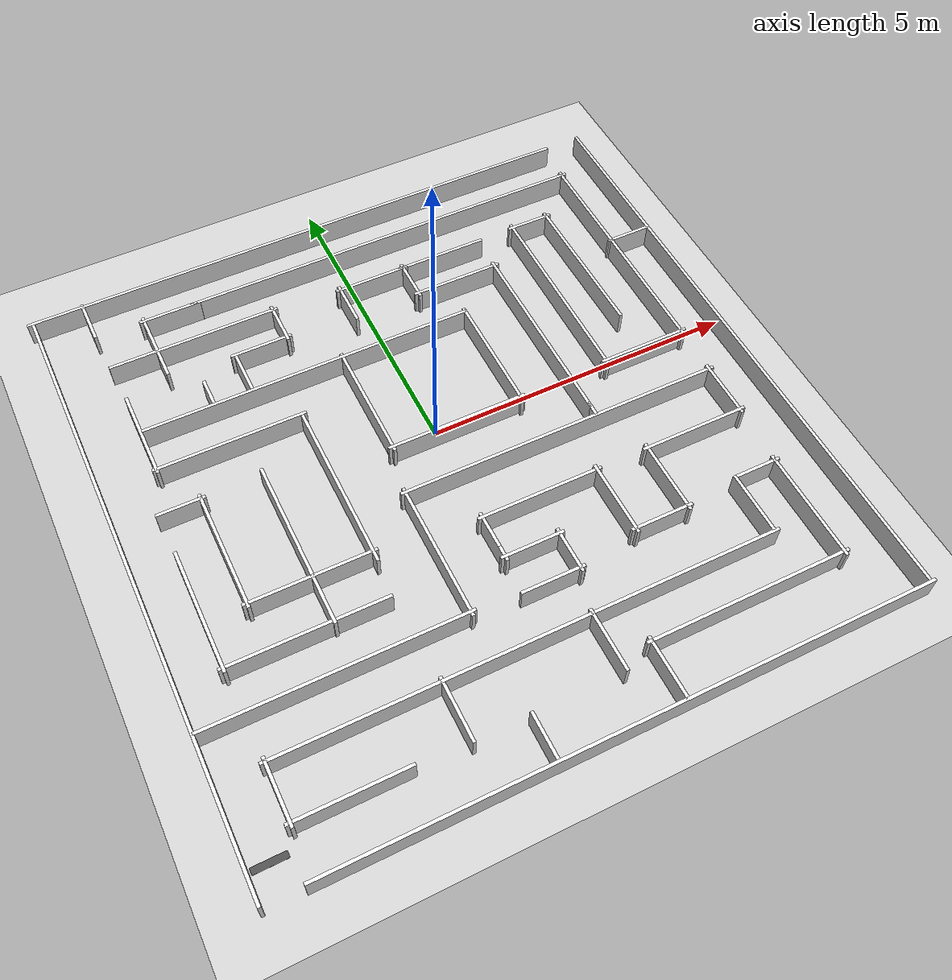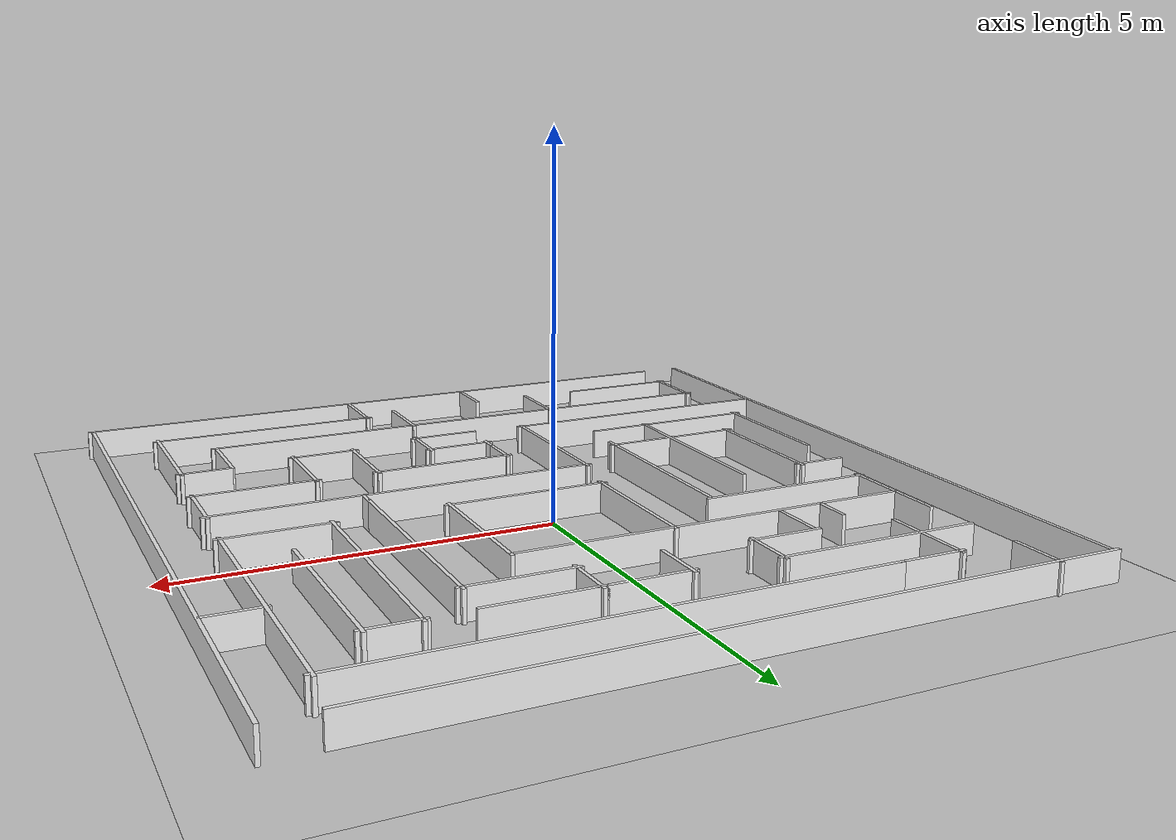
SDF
<sdf version="1.6">
 <world name="default">
  <model name="ground_plane">
   <static>1</static>
   <link name="link">
    <collision name="collision">
     <geometry><plane><normal>0 0 1</normal><size>100 100</size></plane></geometry>
     <surface><friction><ode><mu>100</mu><mu2>50</mu2></ode></friction></surface>
    </collision>
    <visual name="visual">
     <cast_shadows>0</cast_shadows>
     <geometry><plane><normal>0 0 1</normal><size>100 100</size></plane></geometry>
     <material>
      <script><uri>file://media/materials/scripts/gazebo.material</uri><name>Gazebo/Grey</name></script>
     </material>
    </visual>
   </link>
  </model>
  <model name="10x10_maze_1_body_0">
   <pose>0 -0.5 0 0 -0 0</pose>
   <link name="Wall_0">
    <collision name="Wall_0_Collision">
     <geometry><box><size>9.83 0.05 0.4</size></box></geometry>
     <pose>0 0 0.2 0 -0 0</pose>
    </collision>
    <visual name="Wall_0_Visual">
     <pose>0 0 0.2 0 -0 0</pose>
     <geometry><box><size>9.83 0.05 0.4</size></box></geometry>
     <material>
      <script><uri>file://media/materials/scripts/gazebo.material</uri><name>Gazebo/White</name></script>
      <ambient>1 1 1 1</ambient>
     </material>
    </visual>
    <pose>-4.87625 -0.01472 0 0 0 -1.5708</pose>
   </link>
   <link name="Wall_103">
    <collision name="Wall_103_Collision">
     <geometry><box><size>0.5 0.05 0.4</size></box></geometry>
     <pose>0 0 0.2 0 -0 0</pose>
    </collision>
    <visual name="Wall_103_Visual">
     <pose>0 0 0.2 0 -0 0</pose>
     <geometry><box><size>0.5 0.05 0.4</size></box></geometry>
     <material>
      <script><uri>file://media/materials/scripts/gazebo.material</uri><name>Gazebo/White</name></script>
      <ambient>1 1 1 1</ambient>
     </material>
    </visual>
    <pose>-2.85325 2.41853 0 0 -0 1.5708</pose>
   </link>
   <link name="Wall_106">
    <collision name="Wall_106_Collision">
     <geometry><box><size>6.77039 0.05 0.4</size></box></geometry>
     <pose>0 0 0.2 0 -0 0</pose>
    </collision>
    <visual name="Wall_106_Visual">
     <pose>0 0 0.2 0 -0 0</pose>
     <geometry><box><size>6.77039 0.05 0.4</size></box></geometry>
     <material>
      <script><uri>file://media/materials/scripts/gazebo.material</uri><name>Gazebo/White</name></script>
      <ambient>1 1 1 1</ambient>
     </material>
    </visual>
    <pose>0.865745 4.20453 0 0 -0 0</pose>
   </link>
   <link name="Wall_107">
    <collision name="Wall_107_Collision">
     <geometry><box><size>4 0.05 0.4</size></box></geometry>
     <pose>0 0 0.2 0 -0 0</pose>
    </collision>
    <visual name="Wall_107_Visual">
     <pose>0 0 0.2 0 -0 0</pose>
     <geometry><box><size>4 0.05 0.4</size></box></geometry>
     <material>
      <script><uri>file://media/materials/scripts/gazebo.material</uri><name>Gazebo/White</name></script>
      <ambient>1 1 1 1</ambient>
     </material>
    </visual>
    <pose>4.17575 2.27953 0 0 0 -1.5708</pose>
   </link>
   <link name="Wall_108">
    <collision name="Wall_108_Collision">
     <geometry><box><size>1.5 0.05 0.4</size></box></geometry>
     <pose>0 0 0.2 0 -0 0</pose>
    </collision>
    <visual name="Wall_108_Visual">
     <pose>0 0 0.2 0 -0 0</pose>
     <geometry><box><size>1.5 0.05 0.4</size></box></geometry>
     <material>
      <script><uri>file://media/materials/scripts/gazebo.material</uri><name>Gazebo/White</name></script>
      <ambient>1 1 1 1</ambient>
     </material>
    </visual>
    <pose>3.50075 0.354528 0 0 -0 3.14159</pose>
   </link>
   <link name="Wall_109">
    <collision name="Wall_109_Collision">
     <geometry><box><size>3.26525 0.05 0.4</size></box></geometry>
     <pose>0 0 0.2 0 -0 0</pose>
    </collision>
    <visual name="Wall_109_Visual">
     <pose>0 0 0.2 0 -0 0</pose>
     <geometry><box><size>3.26525 0.05 0.4</size></box></geometry>
     <material>
      <script><uri>file://media/materials/scripts/gazebo.material</uri><name>Gazebo/White</name></script>
      <ambient>1 1 1 1</ambient>
     </material>
    </visual>
    <pose>2.83324 1.91203 0 0 -0 1.56598</pose>
   </link>
   <link name="Wall_110">
    <collision name="Wall_110_Collision">
     <geometry><box><size>0.779601 0.05 0.4</size></box></geometry>
     <pose>0 0 0.2 0 -0 0</pose>
    </collision>
    <visual name="Wall_110_Visual">
     <pose>0 0 0.2 0 -0 0</pose>
     <geometry><box><size>0.779601 0.05 0.4</size></box></geometry>
     <material>
      <script><uri>file://media/materials/scripts/gazebo.material</uri><name>Gazebo/White</name></script>
      <ambient>1 1 1 1</ambient>
     </material>
    </visual>
    <pose>3.15575 3.46703 0 0 0 -0.007936</pose>
   </link>
   <link name="Wall_111">
    <collision name="Wall_111_Collision">
     <geometry><box><size>2.51521 0.05 0.4</size></box></geometry>
     <pose>0 0 0.2 0 -0 0</pose>
    </collision>
    <visual name="Wall_111_Visual">
     <pose>0 0 0.2 0 -0 0</pose>
     <geometry><box><size>2.51521 0.05 0.4</size></box></geometry>
     <material>
      <script><uri>file://media/materials/scripts/gazebo.material</uri><name>Gazebo/White</name></script>
      <ambient>1 1 1 1</ambient>
     </material>
    </visual>
    <pose>3.47824 2.28213 0 0 0 -1.56445</pose>
   </link>
   <link name="Wall_113">
    <collision name="Wall_113_Collision">
     <geometry><box><size>1.5 0.05 0.4</size></box></geometry>
     <pose>0 0 0.2 0 -0 0</pose>
    </collision>
    <visual name="Wall_113_Visual">
     <pose>0 0 0.2 0 -0 0</pose>
     <geometry><box><size>1.5 0.05 0.4</size></box></geometry>
     <material>
      <script><uri>file://media/materials/scripts/gazebo.material</uri><name>Gazebo/White</name></script>
      <ambient>1 1 1 1</ambient>
     </material>
    </visual>
    <pose>1.50675 2.85353 0 0 -0 3.14159</pose>
   </link>
   <link name="Wall_114">
    <collision name="Wall_114_Collision">
     <geometry><box><size>0.75 0.05 0.4</size></box></geometry>
     <pose>0 0 0.2 0 -0 0</pose>
    </collision>
    <visual name="Wall_114_Visual">
     <pose>0 0 0.2 0 -0 0</pose>
     <geometry><box><size>0.75 0.05 0.4</size></box></geometry>
     <material>
      <script><uri>file://media/materials/scripts/gazebo.material</uri><name>Gazebo/White</name></script>
      <ambient>1 1 1 1</ambient>
     </material>
    </visual>
    <pose>0.831745 3.15353 0 0 -0 1.5708</pose>
   </link>
   <link name="Wall_115">
    <collision name="Wall_115_Collision">
     <geometry><box><size>1.25 0.05 0.4</size></box></geometry>
     <pose>0 0 0.2 0 -0 0</pose>
    </collision>
    <visual name="Wall_115_Visual">
     <pose>0 0 0.2 0 -0 0</pose>
     <geometry><box><size>1.25 0.05 0.4</size></box></geometry>
     <material>
      <script><uri>file://media/materials/scripts/gazebo.material</uri><name>Gazebo/White</name></script>
      <ambient>1 1 1 1</ambient>
     </material>
    </visual>
    <pose>0.281745 3.45353 0 0 -0 3.14159</pose>
   </link>
   <link name="Wall_116">
    <collision name="Wall_116_Collision">
     <geometry><box><size>0.75 0.05 0.4</size></box></geometry>
     <pose>0 0 0.2 0 -0 0</pose>
    </collision>
    <visual name="Wall_116_Visual">
     <pose>0 0 0.2 0 -0 0</pose>
     <geometry><box><size>0.75 0.05 0.4</size></box></geometry>
     <material>
      <script><uri>file://media/materials/scripts/gazebo.material</uri><name>Gazebo/White</name></script>
      <ambient>1 1 1 1</ambient>
     </material>
    </visual>
    <pose>-0.268255 3.15353 0 0 0 -1.5708</pose>
   </link>
   <link name="Wall_118">
    <collision name="Wall_118_Collision">
     <geometry><box><size>1.5 0.05 0.4</size></box></geometry>
     <pose>0 0 0.2 0 -0 0</pose>
    </collision>
    <visual name="Wall_118_Visual">
     <pose>0 0 0.2 0 -0 0</pose>
     <geometry><box><size>1.5 0.05 0.4</size></box></geometry>
     <material>
      <script><uri>file://media/materials/scripts/gazebo.material</uri><name>Gazebo/White</name></script>
      <ambient>1 1 1 1</ambient>
     </material>
    </visual>
    <pose>1.50675 3.45353 0 0 -0 0</pose>
   </link>
   <link name="Wall_122">
    <collision name="Wall_122_Collision">
     <geometry><box><size>1 0.05 0.4</size></box></geometry>
     <pose>0 0 0.2 0 -0 0</pose>
    </collision>
    <visual name="Wall_122_Visual">
     <pose>0 0 0.2 0 -0 0</pose>
     <geometry><box><size>1 0.05 0.4</size></box></geometry>
     <material>
      <script><uri>file://media/materials/scripts/gazebo.material</uri><name>Gazebo/White</name></script>
      <ambient>1 1 1 1</ambient>
     </material>
    </visual>
    <pose>-2.86925 4.20453 0 0 -0 3.14159</pose>
   </link>
   <link name="Wall_123">
    <collision name="Wall_123_Collision">
     <geometry><box><size>1.25 0.05 0.4</size></box></geometry>
     <pose>0 0 0.2 0 -0 0</pose>
    </collision>
    <visual name="Wall_123_Visual">
     <pose>0 0 0.2 0 -0 0</pose>
     <geometry><box><size>1.25 0.05 0.4</size></box></geometry>
     <material>
      <script><uri>file://media/materials/scripts/gazebo.material</uri><name>Gazebo/White</name></script>
      <ambient>1 1 1 1</ambient>
     </material>
    </visual>
    <pose>-3.29426 3.65453 0 0 0 -1.5708</pose>
   </link>
   <link name="Wall_125">
    <collision name="Wall_125_Collision">
     <geometry><box><size>0.75 0.05 0.4</size></box></geometry>
     <pose>0 0 0.2 0 -0 0</pose>
    </collision>
    <visual name="Wall_125_Visual">
     <pose>0 0 0.2 0 -0 0</pose>
     <geometry><box><size>0.75 0.05 0.4</size></box></geometry>
     <material>
      <script><uri>file://media/materials/scripts/gazebo.material</uri><name>Gazebo/White</name></script>
      <ambient>1 1 1 1</ambient>
     </material>
    </visual>
    <pose>4.49375 2.51153 0 0 -0 0</pose>
   </link>
   <link name="Wall_134">
    <collision name="Wall_134_Collision">
     <geometry><box><size>0.75 0.05 0.4</size></box></geometry>
     <pose>0 0 0.2 0 -0 0</pose>
    </collision>
    <visual name="Wall_134_Visual">
     <pose>0 0 0.2 0 -0 0</pose>
     <geometry><box><size>0.75 0.05 0.4</size></box></geometry>
     <material>
      <script><uri>file://media/materials/scripts/gazebo.material</uri><name>Gazebo/White</name></script>
      <ambient>1 1 1 1</ambient>
     </material>
    </visual>
    <pose>-3.89825 0.701528 0 0 -0 3.14159</pose>
   </link>
   <link name="Wall_136">
    <collision name="Wall_136_Collision">
     <geometry><box><size>5.32 0.05 0.4</size></box></geometry>
     <pose>0 0 0.2 0 -0 0</pose>
    </collision>
    <visual name="Wall_136_Visual">
     <pose>0 0 0.2 0 -0 0</pose>
     <geometry><box><size>5.32 0.05 0.4</size></box></geometry>
     <material>
      <script><uri>file://media/materials/scripts/gazebo.material</uri><name>Gazebo/White</name></script>
      <ambient>1 1 1 1</ambient>
     </material>
    </visual>
    <pose>-1.33126 2.18653 0 0 -0 3.14159</pose>
   </link>
   <link name="Wall_139">
    <collision name="Wall_139_Collision">
     <geometry><box><size>2.25 0.05 0.4</size></box></geometry>
     <pose>0 0 0.2 0 -0 0</pose>
    </collision>
    <visual name="Wall_139_Visual">
     <pose>0 0 0.2 0 -0 0</pose>
     <geometry><box><size>2.25 0.05 0.4</size></box></geometry>
     <material>
      <script><uri>file://media/materials/scripts/gazebo.material</uri><name>Gazebo/White</name></script>
      <ambient>1 1 1 1</ambient>
     </material>
    </visual>
    <pose>0.274745 0.319528 0 0 -0 0</pose>
   </link>
   <link name="Wall_14">
    <collision name="Wall_14_Collision">
     <geometry><box><size>7.75 0.05 0.4</size></box></geometry>
     <pose>0 0 0.2 0 -0 0</pose>
    </collision>
    <visual name="Wall_14_Visual">
     <pose>0 0 0.2 0 -0 0</pose>
     <geometry><box><size>7.75 0.05 0.4</size></box></geometry>
     <material>
      <script><uri>file://media/materials/scripts/gazebo.material</uri><name>Gazebo/White</name></script>
      <ambient>1 1 1 1</ambient>
     </material>
    </visual>
    <pose>-0.382255 -3.30847 0 0 -0 3.14159</pose>
   </link>
   <link name="Wall_140">
    <collision name="Wall_140_Collision">
     <geometry><box><size>2 0.05 0.4</size></box></geometry>
     <pose>0 0 0.2 0 -0 0</pose>
    </collision>
    <visual name="Wall_140_Visual">
     <pose>0 0 0.2 0 -0 0</pose>
     <geometry><box><size>2 0.05 0.4</size></box></geometry>
     <material>
      <script><uri>file://media/materials/scripts/gazebo.material</uri><name>Gazebo/White</name></script>
      <ambient>1 1 1 1</ambient>
     </material>
    </visual>
    <pose>1.32475 1.24453 0 0 -0 1.5708</pose>
   </link>
   <link name="Wall_143">
    <collision name="Wall_143_Collision">
     <geometry><box><size>1 0.05 0.4</size></box></geometry>
     <pose>0 0 0.2 0 -0 0</pose>
    </collision>
    <visual name="Wall_143_Visual">
     <pose>0 0 0.2 0 -0 0</pose>
     <geometry><box><size>1 0.05 0.4</size></box></geometry>
     <material>
      <script><uri>file://media/materials/scripts/gazebo.material</uri><name>Gazebo/White</name></script>
      <ambient>1 1 1 1</ambient>
     </material>
    </visual>
    <pose>-4.18225 -3.73347 0 0 0 -1.5708</pose>
   </link>
   <link name="Wall_144">
    <collision name="Wall_144_Collision">
     <geometry><box><size>1.75 0.05 0.4</size></box></geometry>
     <pose>0 0 0.2 0 -0 0</pose>
    </collision>
    <visual name="Wall_144_Visual">
     <pose>0 0 0.2 0 -0 0</pose>
     <geometry><box><size>1.75 0.05 0.4</size></box></geometry>
     <material>
      <script><uri>file://media/materials/scripts/gazebo.material</uri><name>Gazebo/White</name></script>
      <ambient>1 1 1 1</ambient>
     </material>
    </visual>
    <pose>-3.38225 -4.15847 0 0 -0 0</pose>
   </link>
   <link name="Wall_146">
    <collision name="Wall_146_Collision">
     <geometry><box><size>1 0.05 0.4</size></box></geometry>
     <pose>0 0 0.2 0 -0 0</pose>
    </collision>
    <visual name="Wall_146_Visual">
     <pose>0 0 0.2 0 -0 0</pose>
     <geometry><box><size>1 0.05 0.4</size></box></geometry>
     <material>
      <script><uri>file://media/materials/scripts/gazebo.material</uri><name>Gazebo/White</name></script>
      <ambient>1 1 1 1</ambient>
     </material>
    </visual>
    <pose>-1.73026 -3.73547 0 0 0 -1.5708</pose>
   </link>
   <link name="Wall_149">
    <collision name="Wall_149_Collision">
     <geometry><box><size>0.75 0.05 0.4</size></box></geometry>
     <pose>0 0 0.2 0 -0 0</pose>
    </collision>
    <visual name="Wall_149_Visual">
     <pose>0 0 0.2 0 -0 0</pose>
     <geometry><box><size>0.75 0.05 0.4</size></box></geometry>
     <material>
      <script><uri>file://media/materials/scripts/gazebo.material</uri><name>Gazebo/White</name></script>
      <ambient>1 1 1 1</ambient>
     </material>
    </visual>
    <pose>-0.892255 -4.55247 0 0 -0 1.5708</pose>
   </link>
   <link name="Wall_151">
    <collision name="Wall_151_Collision">
     <geometry><box><size>1 0.05 0.4</size></box></geometry>
     <pose>0 0 0.2 0 -0 0</pose>
    </collision>
    <visual name="Wall_151_Visual">
     <pose>0 0 0.2 0 -0 0</pose>
     <geometry><box><size>1 0.05 0.4</size></box></geometry>
     <material>
      <script><uri>file://media/materials/scripts/gazebo.material</uri><name>Gazebo/White</name></script>
      <ambient>1 1 1 1</ambient>
     </material>
    </visual>
    <pose>0.49745 -3.7387 0 0 0 -1.5708</pose>
   </link>
   <link name="Wall_153">
    <collision name="Wall_153_Collision">
     <geometry><box><size>1 0.05 0.4</size></box></geometry>
     <pose>0 0 0.2 0 -0 0</pose>
    </collision>
    <visual name="Wall_153_Visual">
     <pose>0 0 0.2 0 -0 0</pose>
     <geometry><box><size>1 0.05 0.4</size></box></geometry>
     <material>
      <script><uri>file://media/materials/scripts/gazebo.material</uri><name>Gazebo/White</name></script>
      <ambient>1 1 1 1</ambient>
     </material>
    </visual>
    <pose>0.993745 -4.42747 0 0 -0 1.5708</pose>
   </link>
   <link name="Wall_154">
    <collision name="Wall_154_Collision">
     <geometry><box><size>3.25 0.05 0.4</size></box></geometry>
     <pose>0 0 0.2 0 -0 0</pose>
    </collision>
    <visual name="Wall_154_Visual">
     <pose>0 0 0.2 0 -0 0</pose>
     <geometry><box><size>3.25 0.05 0.4</size></box></geometry>
     <material>
      <script><uri>file://media/materials/scripts/gazebo.material</uri><name>Gazebo/White</name></script>
      <ambient>1 1 1 1</ambient>
     </material>
    </visual>
    <pose>2.54374 -4.00247 0 0 -0 0</pose>
   </link>
   <link name="Wall_155">
    <collision name="Wall_155_Collision">
     <geometry><box><size>1.83502 0.05 0.4</size></box></geometry>
     <pose>0 0 0.2 0 -0 0</pose>
    </collision>
    <visual name="Wall_155_Visual">
     <pose>0 0 0.2 0 -0 0</pose>
     <geometry><box><size>1.83502 0.05 0.4</size></box></geometry>
     <material>
      <script><uri>file://media/materials/scripts/gazebo.material</uri><name>Gazebo/White</name></script>
      <ambient>1 1 1 1</ambient>
     </material>
    </visual>
    <pose>4.09489 -3.15997 0 0 -0 1.56944</pose>
   </link>
   <link name="Wall_16">
    <collision name="Wall_16_Collision">
     <geometry><box><size>4 0.05 0.4</size></box></geometry>
     <pose>0 0 0.2 0 -0 0</pose>
    </collision>
    <visual name="Wall_16_Visual">
     <pose>0 0 0.2 0 -0 0</pose>
     <geometry><box><size>4 0.05 0.4</size></box></geometry>
     <material>
      <script><uri>file://media/materials/scripts/gazebo.material</uri><name>Gazebo/White</name></script>
      <ambient>1 1 1 1</ambient>
     </material>
    </visual>
    <pose>-2.87325 -2.57647 0 0 -0 0</pose>
   </link>
   <link name="Wall_168">
    <collision name="Wall_168_Collision">
     <geometry><box><size>2.3965 0.05 0.4</size></box></geometry>
     <pose>0 0 0.2 0 -0 0</pose>
    </collision>
    <visual name="Wall_168_Visual">
     <pose>0 0 0.2 0 -0 0</pose>
     <geometry><box><size>2.3965 0.05 0.4</size></box></geometry>
     <material>
      <script><uri>file://media/materials/scripts/gazebo.material</uri><name>Gazebo/White</name></script>
      <ambient>1 1 1 1</ambient>
     </material>
    </visual>
    <pose>-2.8715 1.45153 0 0 -0 3.14159</pose>
   </link>
   <link name="Wall_169">
    <collision name="Wall_169_Collision">
     <geometry><box><size>1.5 0.05 0.4</size></box></geometry>
     <pose>0 0 0.2 0 -0 0</pose>
    </collision>
    <visual name="Wall_169_Visual">
     <pose>0 0 0.2 0 -0 0</pose>
     <geometry><box><size>1.5 0.05 0.4</size></box></geometry>
     <material>
      <script><uri>file://media/materials/scripts/gazebo.material</uri><name>Gazebo/White</name></script>
      <ambient>1 1 1 1</ambient>
     </material>
    </visual>
    <pose>-4.00626 2.12653 0 0 -0 1.5708</pose>
   </link>
   <link name="Wall_173">
    <collision name="Wall_173_Collision">
     <geometry><box><size>0.75 0.05 0.4</size></box></geometry>
     <pose>0 0 0.2 0 -0 0</pose>
    </collision>
    <visual name="Wall_173_Visual">
     <pose>0 0 0.2 0 -0 0</pose>
     <geometry><box><size>0.75 0.05 0.4</size></box></geometry>
     <material>
      <script><uri>file://media/materials/scripts/gazebo.material</uri><name>Gazebo/White</name></script>
      <ambient>1 1 1 1</ambient>
     </material>
    </visual>
    <pose>3.79388 -2.31747 0 0 -0 3.14159</pose>
   </link>
   <link name="Wall_175">
    <collision name="Wall_175_Collision">
     <geometry><box><size>1 0.05 0.4</size></box></geometry>
     <pose>0 0 0.2 0 -0 0</pose>
    </collision>
    <visual name="Wall_175_Visual">
     <pose>0 0 0.2 0 -0 0</pose>
     <geometry><box><size>1 0.05 0.4</size></box></geometry>
     <material>
      <script><uri>file://media/materials/scripts/gazebo.material</uri><name>Gazebo/White</name></script>
      <ambient>1 1 1 1</ambient>
     </material>
    </visual>
    <pose>3.41775 -2.79347 0 0 -0 1.5708</pose>
   </link>
   <link name="Wall_3">
    <collision name="Wall_3_Collision">
     <geometry><box><size>9.25 0.05 0.4</size></box></geometry>
     <pose>0 0 0.2 0 -0 0</pose>
    </collision>
    <visual name="Wall_3_Visual">
     <pose>0 0 0.2 0 -0 0</pose>
     <geometry><box><size>9.25 0.05 0.4</size></box></geometry>
     <material>
      <script><uri>file://media/materials/scripts/gazebo.material</uri><name>Gazebo/White</name></script>
      <ambient>1 1 1 1</ambient>
     </material>
    </visual>
    <pose>0.317745 -4.90847 0 0 -0 0</pose>
   </link>
   <link name="Wall_32">
    <collision name="Wall_32_Collision">
     <geometry><box><size>2.25 0.05 0.4</size></box></geometry>
     <pose>0 0 0.2 0 -0 0</pose>
    </collision>
    <visual name="Wall_32_Visual">
     <pose>0 0 0.2 0 -0 0</pose>
     <geometry><box><size>2.25 0.05 0.4</size></box></geometry>
     <material>
      <script><uri>file://media/materials/scripts/gazebo.material</uri><name>Gazebo/White</name></script>
      <ambient>1 1 1 1</ambient>
     </material>
    </visual>
    <pose>-0.948255 -1.52647 0 0 -0 1.5708</pose>
   </link>
   <link name="Wall_33">
    <collision name="Wall_33_Collision">
     <geometry><box><size>5.25 0.05 0.4</size></box></geometry>
     <pose>0 0 0.2 0 -0 0</pose>
    </collision>
    <visual name="Wall_33_Visual">
     <pose>0 0 0.2 0 -0 0</pose>
     <geometry><box><size>5.25 0.05 0.4</size></box></geometry>
     <material>
      <script><uri>file://media/materials/scripts/gazebo.material</uri><name>Gazebo/White</name></script>
      <ambient>1 1 1 1</ambient>
     </material>
    </visual>
    <pose>1.60174 -0.476472 0 0 -0 0</pose>
   </link>
   <link name="Wall_34">
    <collision name="Wall_34_Collision">
     <geometry><box><size>1 0.05 0.4</size></box></geometry>
     <pose>0 0 0.2 0 -0 0</pose>
    </collision>
    <visual name="Wall_34_Visual">
     <pose>0 0 0.2 0 -0 0</pose>
     <geometry><box><size>1 0.05 0.4</size></box></geometry>
     <material>
      <script><uri>file://media/materials/scripts/gazebo.material</uri><name>Gazebo/White</name></script>
      <ambient>1 1 1 1</ambient>
     </material>
    </visual>
    <pose>4.15175 -0.901472 0 0 0 -1.5708</pose>
   </link>
   <link name="Wall_35">
    <collision name="Wall_35_Collision">
     <geometry><box><size>1.75 0.05 0.4</size></box></geometry>
     <pose>0 0 0.2 0 -0 0</pose>
    </collision>
    <visual name="Wall_35_Visual">
     <pose>0 0 0.2 0 -0 0</pose>
     <geometry><box><size>1.75 0.05 0.4</size></box></geometry>
     <material>
      <script><uri>file://media/materials/scripts/gazebo.material</uri><name>Gazebo/White</name></script>
      <ambient>1 1 1 1</ambient>
     </material>
    </visual>
    <pose>3.35175 -1.32647 0 0 -0 3.14159</pose>
   </link>
   <link name="Wall_36">
    <collision name="Wall_36_Collision">
     <geometry><box><size>1.25 0.05 0.4</size></box></geometry>
     <pose>0 0 0.2 0 -0 0</pose>
    </collision>
    <visual name="Wall_36_Visual">
     <pose>0 0 0.2 0 -0 0</pose>
     <geometry><box><size>1.25 0.05 0.4</size></box></geometry>
     <material>
      <script><uri>file://media/materials/scripts/gazebo.material</uri><name>Gazebo/White</name></script>
      <ambient>1 1 1 1</ambient>
     </material>
    </visual>
    <pose>2.55174 -1.87647 0 0 0 -1.5708</pose>
   </link>
   <link name="Wall_37">
    <collision name="Wall_37_Collision">
     <geometry><box><size>1 0.05 0.4</size></box></geometry>
     <pose>0 0 0.2 0 -0 0</pose>
    </collision>
    <visual name="Wall_37_Visual">
     <pose>0 0 0.2 0 -0 0</pose>
     <geometry><box><size>1 0.05 0.4</size></box></geometry>
     <material>
      <script><uri>file://media/materials/scripts/gazebo.material</uri><name>Gazebo/White</name></script>
      <ambient>1 1 1 1</ambient>
     </material>
    </visual>
    <pose>2.12675 -2.42647 0 0 -0 3.14159</pose>
   </link>
   <link name="Wall_38">
    <collision name="Wall_38_Collision">
     <geometry><box><size>1.25 0.05 0.4</size></box></geometry>
     <pose>0 0 0.2 0 -0 0</pose>
    </collision>
    <visual name="Wall_38_Visual">
     <pose>0 0 0.2 0 -0 0</pose>
     <geometry><box><size>1.25 0.05 0.4</size></box></geometry>
     <material>
      <script><uri>file://media/materials/scripts/gazebo.material</uri><name>Gazebo/White</name></script>
      <ambient>1 1 1 1</ambient>
     </material>
    </visual>
    <pose>1.70175 -1.87647 0 0 -0 1.5708</pose>
   </link>
   <link name="Wall_39">
    <collision name="Wall_39_Collision">
     <geometry><box><size>2 0.05 0.4</size></box></geometry>
     <pose>0 0 0.2 0 -0 0</pose>
    </collision>
    <visual name="Wall_39_Visual">
     <pose>0 0 0.2 0 -0 0</pose>
     <geometry><box><size>2 0.05 0.4</size></box></geometry>
     <material>
      <script><uri>file://media/materials/scripts/gazebo.material</uri><name>Gazebo/White</name></script>
      <ambient>1 1 1 1</ambient>
     </material>
    </visual>
    <pose>0.776745 -1.32647 0 0 -0 3.14159</pose>
   </link>
   <link name="Wall_4">
    <collision name="Wall_4_Collision">
     <geometry><box><size>9.83 0.05 0.4</size></box></geometry>
     <pose>0 0 0.2 0 -0 0</pose>
    </collision>
    <visual name="Wall_4_Visual">
     <pose>0 0 0.2 0 -0 0</pose>
     <geometry><box><size>9.83 0.05 0.4</size></box></geometry>
     <material>
      <script><uri>file://media/materials/scripts/gazebo.material</uri><name>Gazebo/White</name></script>
      <ambient>1 1 1 1</ambient>
     </material>
    </visual>
    <pose>4.86775 0.02628 0 0 -0 1.5708</pose>
   </link>
   <link name="Wall_40">
    <collision name="Wall_40_Collision">
     <geometry><box><size>0.75 0.05 0.4</size></box></geometry>
     <pose>0 0 0.2 0 -0 0</pose>
    </collision>
    <visual name="Wall_40_Visual">
     <pose>0 0 0.2 0 -0 0</pose>
     <geometry><box><size>0.75 0.05 0.4</size></box></geometry>
     <material>
      <script><uri>file://media/materials/scripts/gazebo.material</uri><name>Gazebo/White</name></script>
      <ambient>1 1 1 1</ambient>
     </material>
    </visual>
    <pose>-0.148255 -1.62647 0 0 0 -1.5708</pose>
   </link>
   <link name="Wall_41">
    <collision name="Wall_41_Collision">
     <geometry><box><size>0.25 0.05 0.4</size></box></geometry>
     <pose>0 0 0.2 0 -0 0</pose>
    </collision>
    <visual name="Wall_41_Visual">
     <pose>0 0 0.2 0 -0 0</pose>
     <geometry><box><size>0.25 0.05 0.4</size></box></geometry>
     <material>
      <script><uri>file://media/materials/scripts/gazebo.material</uri><name>Gazebo/White</name></script>
      <ambient>1 1 1 1</ambient>
     </material>
    </visual>
    <pose>-0.148255 -1.97647 0 0 0 -1.5708</pose>
   </link>
   <link name="Wall_42">
    <collision name="Wall_42_Collision">
     <geometry><box><size>1 0.05 0.4</size></box></geometry>
     <pose>0 0 0.2 0 -0 0</pose>
    </collision>
    <visual name="Wall_42_Visual">
     <pose>0 0 0.2 0 -0 0</pose>
     <geometry><box><size>1 0.05 0.4</size></box></geometry>
     <material>
      <script><uri>file://media/materials/scripts/gazebo.material</uri><name>Gazebo/White</name></script>
      <ambient>1 1 1 1</ambient>
     </material>
    </visual>
    <pose>0.276745 -2.02647 0 0 -0 0</pose>
   </link>
   <link name="Wall_43">
    <collision name="Wall_43_Collision">
     <geometry><box><size>0.75 0.05 0.4</size></box></geometry>
     <pose>0 0 0.2 0 -0 0</pose>
    </collision>
    <visual name="Wall_43_Visual">
     <pose>0 0 0.2 0 -0 0</pose>
     <geometry><box><size>0.75 0.05 0.4</size></box></geometry>
     <material>
      <script><uri>file://media/materials/scripts/gazebo.material</uri><name>Gazebo/White</name></script>
      <ambient>1 1 1 1</ambient>
     </material>
    </visual>
    <pose>0.701745 -2.32647 0 0 0 -1.5708</pose>
   </link>
   <link name="Wall_44">
    <collision name="Wall_44_Collision">
     <geometry><box><size>1 0.05 0.4</size></box></geometry>
     <pose>0 0 0.2 0 -0 0</pose>
    </collision>
    <visual name="Wall_44_Visual">
     <pose>0 0 0.2 0 -0 0</pose>
     <geometry><box><size>1 0.05 0.4</size></box></geometry>
     <material>
      <script><uri>file://media/materials/scripts/gazebo.material</uri><name>Gazebo/White</name></script>
      <ambient>1 1 1 1</ambient>
     </material>
    </visual>
    <pose>0.276745 -2.62647 0 0 -0 3.14159</pose>
   </link>
   <link name="Wall_46">
    <collision name="Wall_46_Collision">
     <geometry><box><size>2 0.05 0.4</size></box></geometry>
     <pose>0 0 0.2 0 -0 0</pose>
    </collision>
    <visual name="Wall_46_Visual">
     <pose>0 0 0.2 0 -0 0</pose>
     <geometry><box><size>2 0.05 0.4</size></box></geometry>
     <material>
      <script><uri>file://media/materials/scripts/gazebo.material</uri><name>Gazebo/White</name></script>
      <ambient>1 1 1 1</ambient>
     </material>
    </visual>
    <pose>-4.21425 -0.968472 0 0 -0 1.5708</pose>
   </link>
   <link name="Wall_6">
    <collision name="Wall_6_Collision">
     <geometry><box><size>9.25 0.05 0.4</size></box></geometry>
     <pose>0 0 0.2 0 -0 0</pose>
    </collision>
    <visual name="Wall_6_Visual">
     <pose>0 0 0.2 0 -0 0</pose>
     <geometry><box><size>9.25 0.05 0.4</size></box></geometry>
     <material>
      <script><uri>file://media/materials/scripts/gazebo.material</uri><name>Gazebo/White</name></script>
      <ambient>1 1 1 1</ambient>
     </material>
    </visual>
    <pose>-0.343745 4.90753 0 0 -0 0</pose>
   </link>
   <link name="Wall_63">
    <collision name="Wall_63_Collision">
     <geometry><box><size>2.5 0.05 0.4</size></box></geometry>
     <pose>0 0 0.2 0 -0 0</pose>
    </collision>
    <visual name="Wall_63_Visual">
     <pose>0 0 0.2 0 -0 0</pose>
     <geometry><box><size>2.5 0.05 0.4</size></box></geometry>
     <material>
      <script><uri>file://media/materials/scripts/gazebo.material</uri><name>Gazebo/White</name></script>
      <ambient>1 1 1 1</ambient>
     </material>
    </visual>
    <pose>-3.03925 -1.89347 0 0 -0 0</pose>
   </link>
   <link name="Wall_77">
    <collision name="Wall_77_Collision">
     <geometry><box><size>2 0.05 0.4</size></box></geometry>
     <pose>0 0 0.2 0 -0 0</pose>
    </collision>
    <visual name="Wall_77_Visual">
     <pose>0 0 0.2 0 -0 0</pose>
     <geometry><box><size>2 0.05 0.4</size></box></geometry>
     <material>
      <script><uri>file://media/materials/scripts/gazebo.material</uri><name>Gazebo/White</name></script>
      <ambient>1 1 1 1</ambient>
     </material>
    </visual>
    <pose>-3.59825 -0.223472 0 0 0 -1.5708</pose>
   </link>
   <link name="Wall_78">
    <collision name="Wall_78_Collision">
     <geometry><box><size>2 0.05 0.4</size></box></geometry>
     <pose>0 0 0.2 0 -0 0</pose>
    </collision>
    <visual name="Wall_78_Visual">
     <pose>0 0 0.2 0 -0 0</pose>
     <geometry><box><size>2 0.05 0.4</size></box></geometry>
     <material>
      <script><uri>file://media/materials/scripts/gazebo.material</uri><name>Gazebo/White</name></script>
      <ambient>1 1 1 1</ambient>
     </material>
    </visual>
    <pose>-2.67326 -1.14847 0 0 -0 0</pose>
   </link>
   <link name="Wall_79">
    <collision name="Wall_79_Collision">
     <geometry><box><size>2.75 0.05 0.4</size></box></geometry>
     <pose>0 0 0.2 0 -0 0</pose>
    </collision>
    <visual name="Wall_79_Visual">
     <pose>0 0 0.2 0 -0 0</pose>
     <geometry><box><size>2.75 0.05 0.4</size></box></geometry>
     <material>
      <script><uri>file://media/materials/scripts/gazebo.material</uri><name>Gazebo/White</name></script>
      <ambient>1 1 1 1</ambient>
     </material>
    </visual>
    <pose>-1.74825 0.051528 0 0 -0 1.5708</pose>
   </link>
   <link name="Wall_85">
    <collision name="Wall_85_Collision">
     <geometry><box><size>2 0.05 0.4</size></box></geometry>
     <pose>0 0 0.2 0 -0 0</pose>
    </collision>
    <visual name="Wall_85_Visual">
     <pose>0 0 0.2 0 -0 0</pose>
     <geometry><box><size>2 0.05 0.4</size></box></geometry>
     <material>
      <script><uri>file://media/materials/scripts/gazebo.material</uri><name>Gazebo/White</name></script>
      <ambient>1 1 1 1</ambient>
     </material>
    </visual>
    <pose>-0.775255 1.24453 0 0 -0 1.5708</pose>
   </link>
   <link name="Wall_87">
    <collision name="Wall_87_Collision">
     <geometry><box><size>2.75 0.05 0.4</size></box></geometry>
     <pose>0 0 0.2 0 -0 0</pose>
    </collision>
    <visual name="Wall_87_Visual">
     <pose>0 0 0.2 0 -0 0</pose>
     <geometry><box><size>2.75 0.05 0.4</size></box></geometry>
     <material>
      <script><uri>file://media/materials/scripts/gazebo.material</uri><name>Gazebo/White</name></script>
      <ambient>1 1 1 1</ambient>
     </material>
    </visual>
    <pose>-2.64626 -0.573472 0 0 -0 1.5708</pose>
   </link>
   <link name="Wall_89">
    <collision name="Wall_89_Collision">
     <geometry><box><size>3.25 0.05 0.4</size></box></geometry>
     <pose>0 0 0.2 0 -0 0</pose>
    </collision>
    <visual name="Wall_89_Visual">
     <pose>0 0 0.2 0 -0 0</pose>
     <geometry><box><size>3.25 0.05 0.4</size></box></geometry>
     <material>
      <script><uri>file://media/materials/scripts/gazebo.material</uri><name>Gazebo/White</name></script>
      <ambient>1 1 1 1</ambient>
     </material>
    </visual>
    <pose>2.18174 1.30353 0 0 0 -1.5708</pose>
   </link>
   <link name="Wall_90">
    <collision name="Wall_90_Collision">
     <geometry><box><size>0.25 0.05 0.4</size></box></geometry>
     <pose>0 0 0.2 0 -0 0</pose>
    </collision>
    <visual name="Wall_90_Visual">
     <pose>0 0 0.2 0 -0 0</pose>
     <geometry><box><size>0.25 0.05 0.4</size></box></geometry>
     <material>
      <script><uri>file://media/materials/scripts/gazebo.material</uri><name>Gazebo/White</name></script>
      <ambient>1 1 1 1</ambient>
     </material>
    </visual>
    <pose>2.18174 -0.346472 0 0 0 -1.5708</pose>
   </link>
   <link name="Wall_94">
    <collision name="Wall_94_Collision">
     <geometry><box><size>2.75 0.05 0.4</size></box></geometry>
     <pose>0 0 0.2 0 -0 0</pose>
    </collision>
    <visual name="Wall_94_Visual">
     <pose>0 0 0.2 0 -0 0</pose>
     <geometry><box><size>2.75 0.05 0.4</size></box></geometry>
     <material>
      <script><uri>file://media/materials/scripts/gazebo.material</uri><name>Gazebo/White</name></script>
      <ambient>1 1 1 1</ambient>
     </material>
    </visual>
    <pose>-2.69326 3.53753 0 0 -0 0</pose>
   </link>
   <link name="Wall_95">
    <collision name="Wall_95_Collision">
     <geometry><box><size>0.75 0.05 0.4</size></box></geometry>
     <pose>0 0 0.2 0 -0 0</pose>
    </collision>
    <visual name="Wall_95_Visual">
     <pose>0 0 0.2 0 -0 0</pose>
     <geometry><box><size>0.75 0.05 0.4</size></box></geometry>
     <material>
      <script><uri>file://media/materials/scripts/gazebo.material</uri><name>Gazebo/White</name></script>
      <ambient>1 1 1 1</ambient>
     </material>
    </visual>
    <pose>-1.39325 3.23753 0 0 0 -1.5708</pose>
   </link>
   <link name="Wall_96">
    <collision name="Wall_96_Collision">
     <geometry><box><size>1 0.05 0.4</size></box></geometry>
     <pose>0 0 0.2 0 -0 0</pose>
    </collision>
    <visual name="Wall_96_Visual">
     <pose>0 0 0.2 0 -0 0</pose>
     <geometry><box><size>1 0.05 0.4</size></box></geometry>
     <material>
      <script><uri>file://media/materials/scripts/gazebo.material</uri><name>Gazebo/White</name></script>
      <ambient>1 1 1 1</ambient>
     </material>
    </visual>
    <pose>-1.81825 2.93753 0 0 -0 3.14159</pose>
   </link>
   <link name="Wall_97">
    <collision name="Wall_97_Collision">
     <geometry><box><size>0.75 0.05 0.4</size></box></geometry>
     <pose>0 0 0.2 0 -0 0</pose>
    </collision>
    <visual name="Wall_97_Visual">
     <pose>0 0 0.2 0 -0 0</pose>
     <geometry><box><size>0.75 0.05 0.4</size></box></geometry>
     <material>
      <script><uri>file://media/materials/scripts/gazebo.material</uri><name>Gazebo/White</name></script>
      <ambient>1 1 1 1</ambient>
     </material>
    </visual>
    <pose>-2.24325 2.53753 0 0 0 -1.5708</pose>
   </link>
   <link name="Wall_99">
    <collision name="Wall_99_Collision">
     <geometry><box><size>0.75 0.05 0.4</size></box></geometry>
     <pose>0 0 0.2 0 -0 0</pose>
    </collision>
    <visual name="Wall_99_Visual">
     <pose>0 0 0.2 0 -0 0</pose>
     <geometry><box><size>0.75 0.05 0.4</size></box></geometry>
     <material>
      <script><uri>file://media/materials/scripts/gazebo.material</uri><name>Gazebo/White</name></script>
      <ambient>1 1 1 1</ambient>
     </material>
    </visual>
    <pose>-4.07425 4.58553 0 0 0 -1.5708</pose>
   </link>
   <static>1</static>
  </model>
  <model name="asphalt_red_plane">
   <static>1</static>
   <link name="link">
    <collision name="collision"><geometry><box><size>0.5 0.1 0.005</size></box></geometry></collision>
    <visual name="visual">
     <cast_shadows>0</cast_shadows>
     <geometry><box><size>0.5 0.1 0.005</size></box></geometry>
     <material>
      <script>
       <uri>model://asphalt_red_plane/materials/scripts</uri>
       <uri>model://asphalt_red_plane/materials/textures</uri>
       <name>vrc/asphalt_red</name>
      </script>
     </material>
    </visual>
   </link>
   <pose>-4.57897 -4.87129 0.0001 0 -0 0</pose>
  </model>
 </world>
</sdf>
